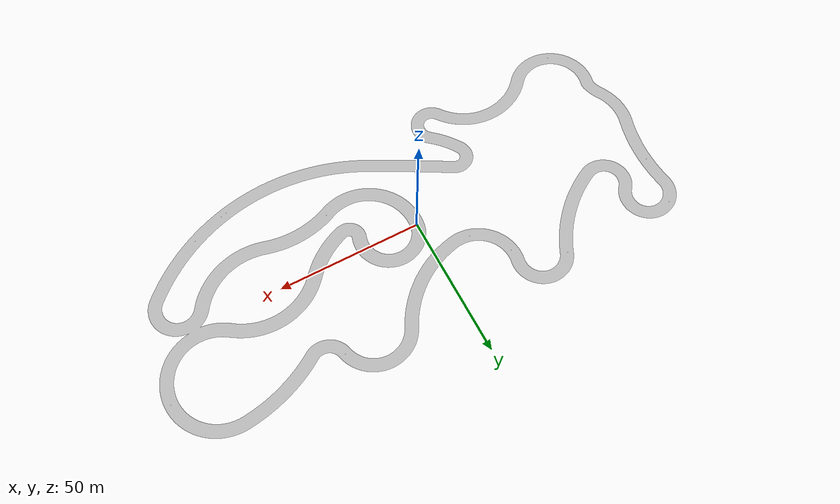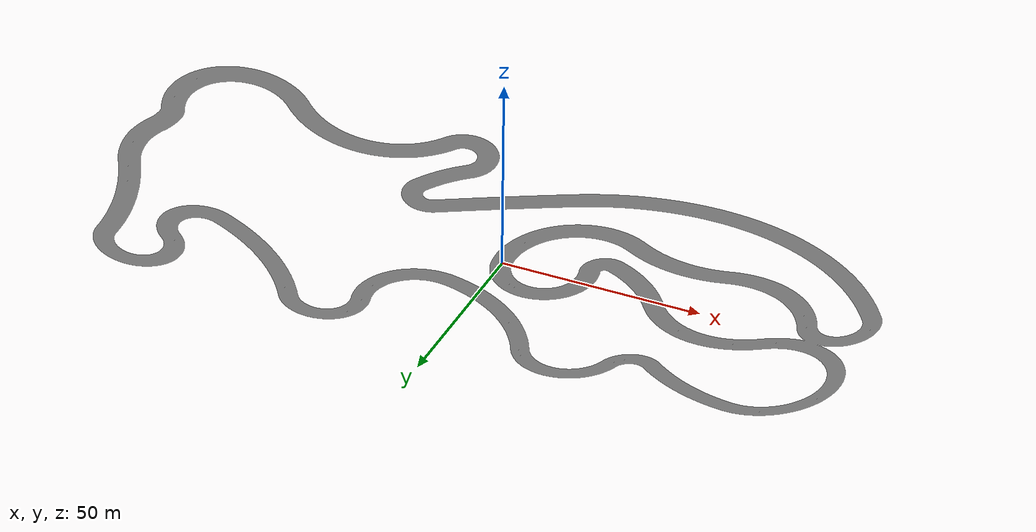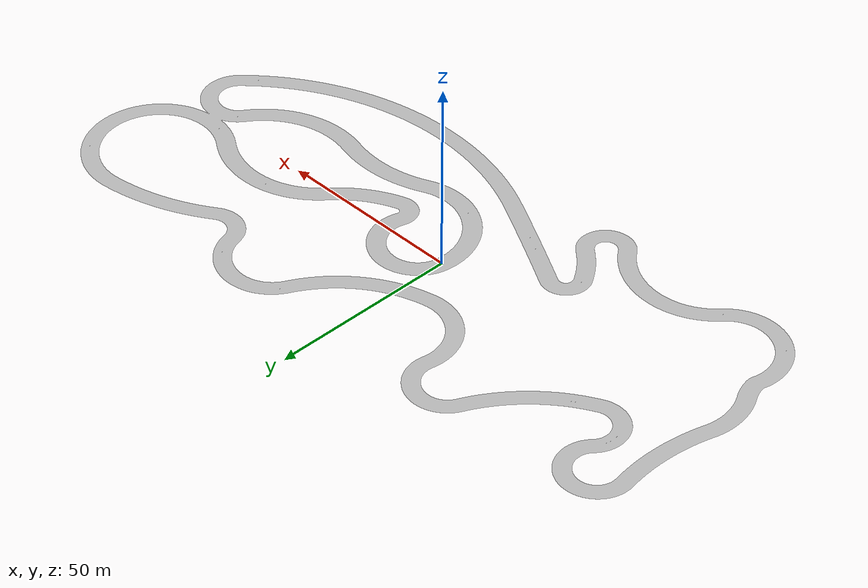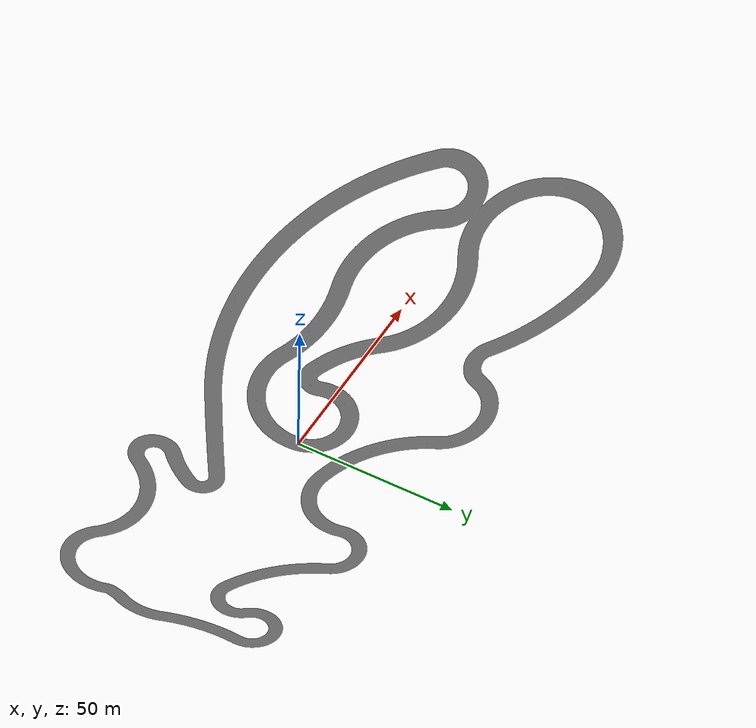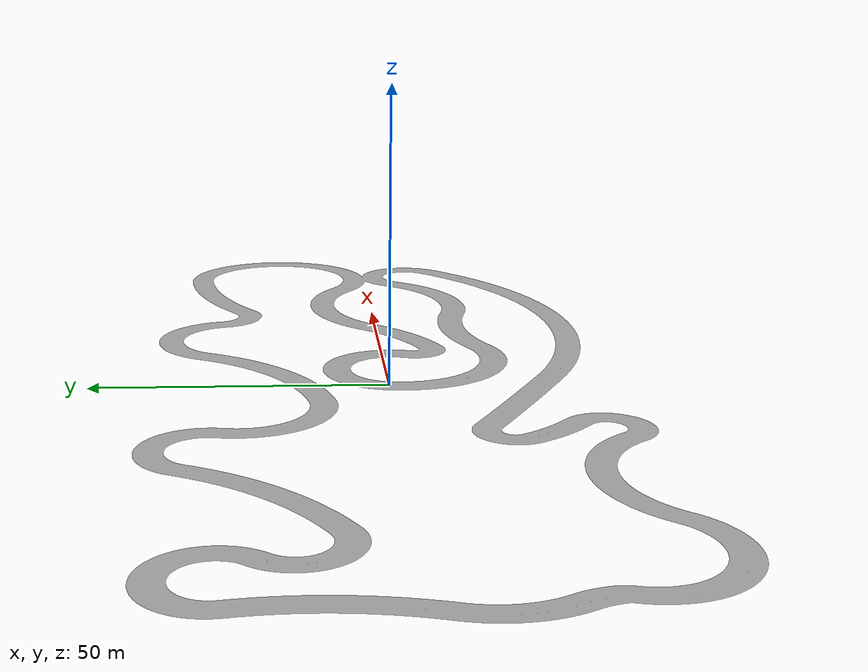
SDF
<?xml version="1.0" ?>
<sdf version="1.3">
<model name="circuito2">
	<static>true</static>
	<link name="mapa">
		<pose>0 0 0 0 0 0</pose>
		<collision name="collision">
			<geometry>
				<plane>
					<normal>0 0 1</normal>
					<size>1000 1000</size>
				</plane>
			</geometry>
		</collision>
		<visual name="visual">
			<pose>0 0 0 0 0 0</pose>
			<geometry>
				<mesh>
					<uri>model://many_curves_no_red_line_no_wall/meshes/circuit_curve_no_line.dae</uri>
				</mesh>
			</geometry>
		</visual>
	</link>
</model>
</sdf>
